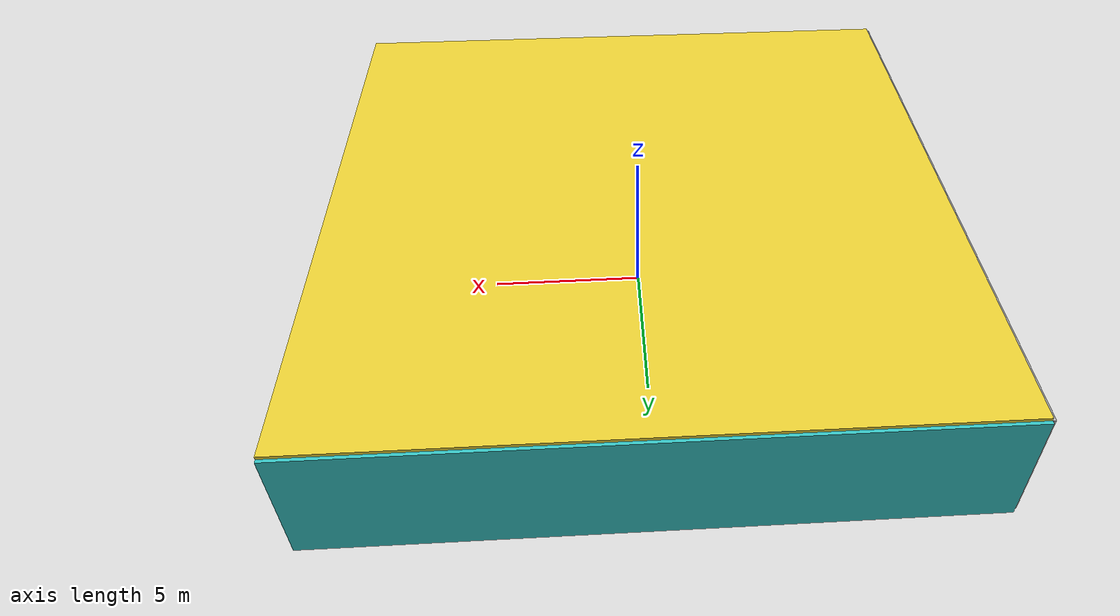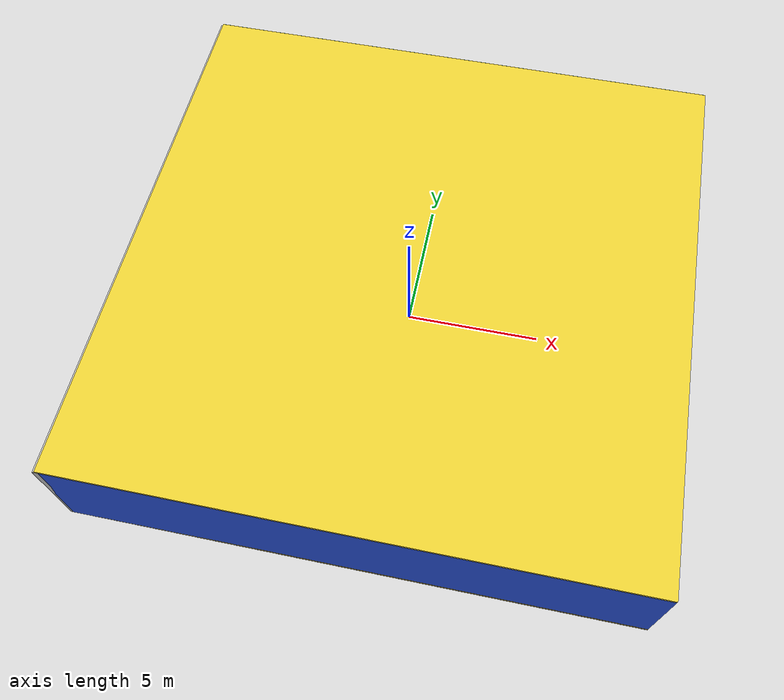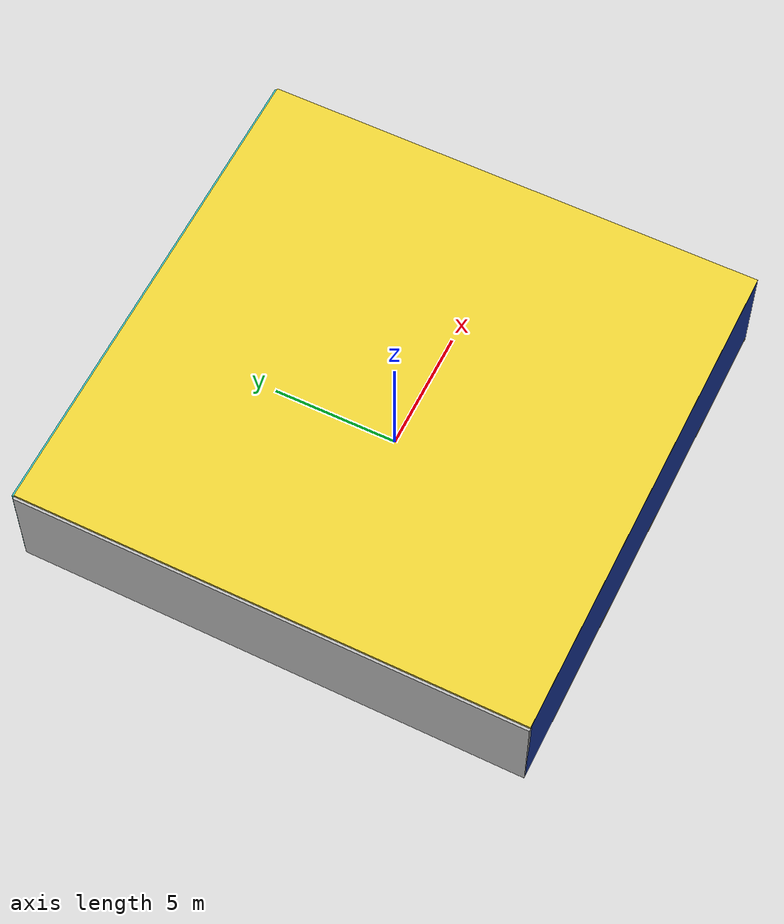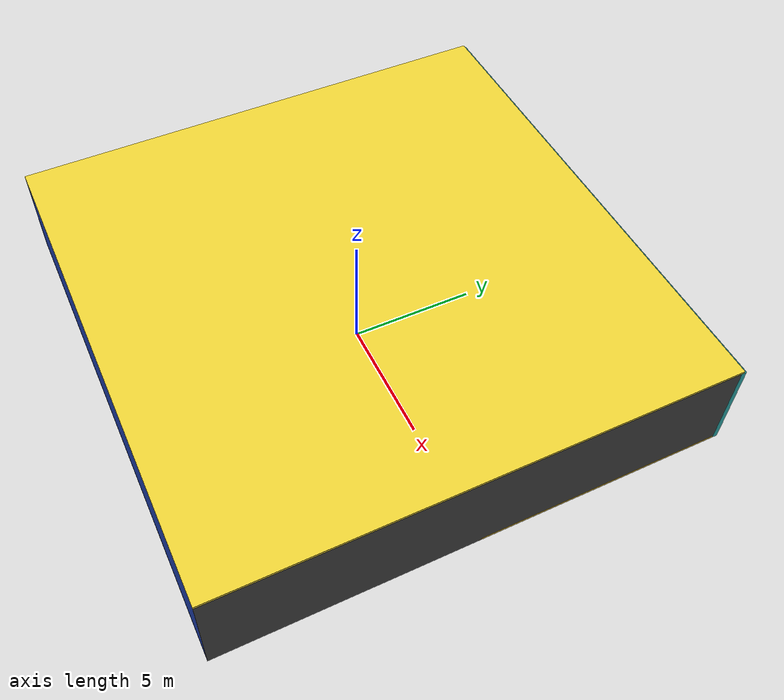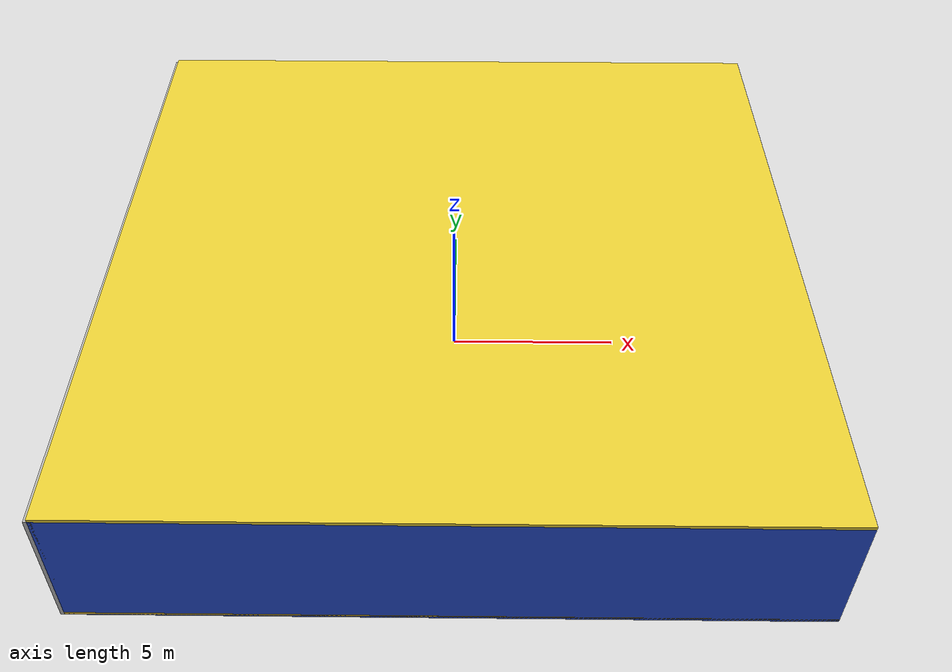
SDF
<sdf version="1.4">
 <world name="default">
  <physics type="ode">
   <max_step_size>0.001</max_step_size>
   <real_time_factor>1</real_time_factor>
   <real_time_update_rate>1000</real_time_update_rate>
   <gravity>0 0 -9.8</gravity>
  </physics>
  <scene><ambient>0.4 0.4 0.4 1</ambient><background>0.7 0.7 0.7 1</background><shadows>1</shadows></scene>
  <model name="Surrounding">
   <static>1</static>
   <link name="Ceiling">
    <collision name="Ceiling_Collision"><geometry><box><size>20 20 0.1</size></box></geometry></collision>
    <visual name="Ceiling_Visual">
     <geometry><box><size>20 20 0.1</size></box></geometry>
     <material>
      <script><uri>file://media/materials/scripts/gazebo.material</uri><name>Gazebo/ZincYellow</name></script>
     </material>
    </visual>
    <pose>0 0 4.05 0 0 0</pose>
   </link>
   <link name="Wall_South">
    <collision name="Wall_South_Collision">
     <geometry><box><size>20 0 4</size></box></geometry>
     <pose>0 0 2 0 -0 0</pose>
    </collision>
    <visual name="Wall_South_Visual">
     <pose>0 0 2 0 -0 0</pose>
     <geometry><box><size>20 0 4</size></box></geometry>
     <material>
      <script><uri>file://media/materials/scripts/gazebo.material</uri><name>Gazebo/Blue</name></script>
     </material>
    </visual>
    <velocity_decay><linear>0</linear><angular>0</angular></velocity_decay>
    <pose>0 -10 0 0 -0 0</pose>
   </link>
   <link name="Wall_East">
    <collision name="Wall_21_Collision">
     <geometry><box><size>20 0 4</size></box></geometry>
     <pose>0 0 2 0 -0 0</pose>
    </collision>
    <visual name="Wall_21_Visual">
     <pose>0 0 2 0 -0 0</pose>
     <geometry><box><size>20 0 4</size></box></geometry>
     <material>
      <script><uri>file://media/materials/scripts/gazebo.material</uri><name>Gazebo/DarkGrey</name></script>
     </material>
    </visual>
    <velocity_decay><linear>0</linear><angular>0</angular></velocity_decay>
    <pose>10 0 0 0 -0 1.5708</pose>
   </link>
   <link name="Wall_North">
    <collision name="Wall_22_Collision">
     <geometry><box><size>20 0.2 4</size></box></geometry>
     <pose>0 0 2 0 -0 0</pose>
    </collision>
    <visual name="Wall_22_Visual">
     <pose>0 0 2 0 -0 0</pose>
     <geometry><box><size>20 0.2 4</size></box></geometry>
     <material>
      <script>
       <uri>file://media/materials/scripts/gazebo.material</uri>
       <name>Gazebo/TurquoiseGlowOutline</name>
      </script>
     </material>
    </visual>
    <velocity_decay><linear>0</linear><angular>0</angular></velocity_decay>
    <pose>0 10 0 0 -0 0</pose>
   </link>
   <link name="Wall_West">
    <collision name="Wall_23_Collision">
     <geometry><box><size>20 0.2 4</size></box></geometry>
     <pose>0 0 2 0 -0 0</pose>
    </collision>
    <visual name="Wall_23_Visual">
     <pose>0 0 2 0 -0 0</pose>
     <geometry><box><size>20 0.2 4</size></box></geometry>
     <material>
      <script><uri>file://media/materials/scripts/gazebo.material</uri><name>Gazebo/LightOff</name></script>
     </material>
    </visual>
    <velocity_decay><linear>0</linear><angular>0</angular></velocity_decay>
    <pose>-10 0 0 0 0 -1.5708</pose>
   </link>
   <link name="Ground_link">
    <collision name="collision">
     <pose>0 0 .05 0 -0 0</pose>
     <geometry><box><size>20 20 0.1</size></box></geometry>
    </collision>
    <visual name="visual">
     <pose>0 0 .05 0 -0 0</pose>
     <geometry><box><size>20 20 0.1</size></box></geometry>
     <material>
      <script><uri>file://media/materials/scripts/gazebo.material</uri><name>Gazebo/Gold</name></script>
     </material>
    </visual>
   </link>
   <static>1</static>
  </model>
  <spherical_coordinates>
   <surface_model>EARTH_WGS84</surface_model>
   <latitude_deg>0</latitude_deg>
   <longitude_deg>0</longitude_deg>
   <elevation>0</elevation>
   <heading_deg>0</heading_deg>
  </spherical_coordinates>
  <light name="lightball_0" type="diffuse">
   <diffuse>0.8 0.8 0.8 1</diffuse>
   <specular>0.2 0.2 0.2 1</specular>
   <attenuation>
    <range>100</range>
    <constant>0.7</constant>
    <linear>0.01</linear>
    <quadratic>0.001</quadratic>
   </attenuation>
   <direction>-0.5 0.1 -0.9</direction>
   <pose>-8.88470398863 -4.64885721121 1.47055843064 0 0 0</pose>
  </light>
  <light name="lightball_1" type="diffuse">
   <diffuse>0.8 0.8 0.8 1</diffuse>
   <specular>0.2 0.2 0.2 1</specular>
   <attenuation>
    <range>100</range>
    <constant>0.7</constant>
    <linear>0.01</linear>
    <quadratic>0.001</quadratic>
   </attenuation>
   <direction>-0.5 0.1 -0.9</direction>
   <pose>-9.1299093939 8.92119294967 1.3846106477 0 0 0</pose>
  </light>
  <light name="lightball_2" type="diffuse">
   <diffuse>0.8 0.8 0.8 1</diffuse>
   <specular>0.2 0.2 0.2 1</specular>
   <attenuation>
    <range>100</range>
    <constant>0.7</constant>
    <linear>0.01</linear>
    <quadratic>0.001</quadratic>
   </attenuation>
   <direction>-0.5 0.1 -0.9</direction>
   <pose>-3.62798764364 7.36016372181 3.68522341013 0 0 0</pose>
  </light>
  <light name="lightball_3" type="diffuse">
   <diffuse>0.8 0.8 0.8 1</diffuse>
   <specular>0.2 0.2 0.2 1</specular>
   <attenuation>
    <range>100</range>
    <constant>0.7</constant>
    <linear>0.01</linear>
    <quadratic>0.001</quadratic>
   </attenuation>
   <direction>-0.5 0.1 -0.9</direction>
   <pose>-1.36564643867 9.78680954759 3.1021110503 0 0 0</pose>
  </light>
  <include>
   <uri>model://construction_cone</uri>
   <pose>-7.33069444526 -8.57238083115 0 0 0 1.72043866585</pose>
  </include>
  <include>
   <uri>model://robocup_3Dsim_goal</uri>
   <pose>-8.19917332981 -3.30581798821 0 0 0 1.64413975979</pose>
  </include>
  <include>
   <uri>model://textured_shapes</uri>
   <pose>-6.35714790884 3.78382317824 0 0 0 0.393439410618</pose>
  </include>
  <include>
   <uri>model://textured_shapes</uri>
   <pose>-5.67164155074 -4.38694388917 0 0 0 1.07879939554</pose>
  </include>
  <include>
   <uri>model://construction_cone</uri>
   <pose>-5.00716848624 1.55798356265 0 0 0 2.71855899645</pose>
  </include>
  <include>
   <uri>model://construction_cone</uri>
   <pose>-3.95210311174 3.3479316301 0 0 0 0.777269404765</pose>
  </include>
  <include><uri>model://cabinet</uri><pose>-0.654767997539 0.578304807869 0 0 0 0.30730982361</pose></include>
  <include>
   <uri>model://robocup_3Dsim_goal</uri>
   <pose>1.27544753462 -7.09904106164 0 0 0 3.08245845062</pose>
  </include>
  <include><uri>model://cabinet</uri><pose>8.59926475239 -1.39736592085 0 0 0 2.38079161541</pose></include>
  <include><uri>model://cabinet</uri><pose>6.38414608947 1.64128810801 0 0 0 2.09198419102</pose></include>
 </world>
</sdf>

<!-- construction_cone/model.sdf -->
<sdf version="1.5">
  <model name="Construction Cone">
    <link name="link">
      <collision name="collision">
        <geometry>
          <mesh>
            <scale>10 10 10</scale>
            <uri>file://isr-testbed/construction_cone/meshes/construction_cone.dae</uri>
          </mesh>
        </geometry>
      </collision>
      <visual name="visual">
        <geometry>
          <mesh>
            <scale>10 10 10</scale>
            <uri>file://isr-testbed/construction_cone/meshes/construction_cone.dae</uri>
          </mesh>
        </geometry>
      </visual>
    </link>
  </model>
</sdf>

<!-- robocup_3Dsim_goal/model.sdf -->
<sdf version="1.5">
  <model name="robocup_3d_goal">
    <static>true</static>
    <link name="left_post">
      <pose>0 1.05 0.45 0 0 0</pose>
      <collision name="collision">
        <geometry>
          <cylinder>
            <radius>0.05</radius>
            <length>0.9</length>
          </cylinder>
        </geometry>
      </collision>
      <visual name="visual">
        <geometry>
          <cylinder>
            <radius>0.05</radius>
            <length>0.9</length>
          </cylinder>
        </geometry>
        <material>
          <script>
            <uri>file://media/materials/scripts/gazebo.material</uri>
            <name>Gazebo/ZincYellow</name>
          </script>
        </material>
      </visual>
    </link>
    <link name="left_support_horiz_lower">
      <pose>0.30 1.05 0.01 0 0 0</pose>
      <collision name="collision">
        <geometry>
          <box>
            <size>0.50 0.02 0.02</size>
          </box>
        </geometry>
      </collision>
      <visual name="visual">
        <geometry>
          <box>
            <size>0.50 0.02 0.02</size>
          </box>
        </geometry>
        <material>
          <script>
            <uri>file://media/materials/scripts/gazebo.material</uri>
            <name>Gazebo/White</name>
          </script>
        </material>
      </visual>
    </link>
    <link name="left_support_horiz_upper">
      <pose>0.30 1.05 0.79 0 0 0</pose>
      <collision name="collision">
        <geometry>
          <box>
            <size>0.50 0.02 0.02</size>
          </box>
        </geometry>
      </collision>
      <visual name="visual">
        <geometry>
          <box>
            <size>0.50 0.02 0.02</size>
          </box>
        </geometry>
        <material>
          <script>
            <uri>file://media/materials/scripts/gazebo.material</uri>
            <name>Gazebo/White</name>
          </script>
        </material>
      </visual>
    </link>
    <link name="left_support_vertical">
      <pose>0.56 1.05 0.4 0 1.5708 0</pose>
      <collision name="collision">
        <geometry>
          <box>
            <size>0.80 0.02 0.02</size>
          </box>
        </geometry>
      </collision>
      <visual name="visual">
        <geometry>
          <box>
            <size>0.80 0.02 0.02</size>
          </box>
        </geometry>
        <material>
          <script>
            <uri>file://media/materials/scripts/gazebo.material</uri>
            <name>Gazebo/White</name>
          </script>
        </material>
      </visual>
    </link>
    <link name="right_support_horiz_lower">
      <pose>0.30 -1.05 0.01 0 0 0</pose>
      <collision name="collision">
        <geometry>
          <box>
            <size>0.50 0.02 0.02</size>
          </box>
        </geometry>
      </collision>
      <visual name="visual">
        <geometry>
          <box>
            <size>0.50 0.02 0.02</size>
          </box>
        </geometry>
        <material>
          <script>
            <uri>file://media/materials/scripts/gazebo.material</uri>
            <name>Gazebo/White</name>
          </script>
        </material>
      </visual>
    </link>
    <link name="right_support_horiz_upper">
      <pose>0.30 -1.05 0.79 0 0 0</pose>
      <collision name="collision">
        <geometry>
          <box>
            <size>0.50 0.02 0.02</size>
          </box>
        </geometry>
      </collision>
      <visual name="visual">
        <geometry>
          <box>
            <size>0.50 0.02 0.02</size>
          </box>
        </geometry>
        <material>
          <script>
            <uri>file://media/materials/scripts/gazebo.material</uri>
            <name>Gazebo/White</name>
          </script>
        </material>
      </visual>
    </link>
    <link name="right_support_vertical">
      <pose>0.56 -1.05 0.4 0 1.5708 0</pose>
      <collision name="collision">
        <geometry>
          <box>
            <size>0.80 0.02 0.02</size>
          </box>
        </geometry>
      </collision>
      <visual name="visual">
        <geometry>
          <box>
            <size>0.80 0.02 0.02</size>
          </box>
        </geometry>
        <material>
          <script>
            <uri>file://media/materials/scripts/gazebo.material</uri>
            <name>Gazebo/White</name>
          </script>
        </material>
      </visual>
    </link>
    <link name="center_support_horiz_lower">
      <pose>0.56 0 0.01 0 1.5708 0</pose>
      <collision name="collision">
        <geometry>
          <box>
            <size>0.02 2.08 0.02</size>
          </box>
        </geometry>
      </collision>
      <visual name="visual">
        <geometry>
          <box>
            <size>0.02 2.08 0.02</size>
          </box>
        </geometry>
        <material>
          <script>
            <uri>file://media/materials/scripts/gazebo.material</uri>
            <name>Gazebo/White</name>
          </script>
        </material>
      </visual>
    </link>
    <link name="center_support_horiz_upper">
      <pose>0.56 0 0.79 0 1.5708 0</pose>
      <collision name="collision">
        <geometry>
          <box>
            <size>0.02 2.08 0.02</size>
          </box>
        </geometry>
      </collision>
      <visual name="visual">
        <geometry>
          <box>
            <size>0.02 2.08 0.02</size>
          </box>
        </geometry>
        <material>
          <script>
            <uri>file://media/materials/scripts/gazebo.material</uri>
            <name>Gazebo/White</name>
          </script>
        </material>
      </visual>
    </link>
    <link name="right_post">
      <pose>0 -1.05 0.45 0 0 0</pose>
      <collision name="collision">
        <geometry>
          <cylinder>
            <radius>0.05</radius>
            <length>0.9</length>
          </cylinder>
        </geometry>
      </collision>
      <visual name="visual">
        <geometry>
          <cylinder>
            <radius>0.05</radius>
            <length>0.9</length>
          </cylinder>
        </geometry>
        <material>
          <script>
            <uri>file://media/materials/scripts/gazebo.material</uri>
            <name>Gazebo/ZincYellow</name>
          </script>
        </material>
      </visual>
    </link>
    <link name="crossbar">
      <pose>0 0 0.85 1.57 1.57 0</pose>
      <collision name="collision">
        <geometry>
          <cylinder>
            <radius>0.05</radius>
            <length>2.0</length>
          </cylinder>
        </geometry>
      </collision>
      <visual name="visual">
        <geometry>
          <cylinder>
            <radius>0.05</radius>
            <length>2.0</length>
          </cylinder>
        </geometry>
        <material>
          <script>
            <uri>file://media/materials/scripts/gazebo.material</uri>
            <name>Gazebo/ZincYellow</name>
          </script>
        </material>
      </visual>
    </link>
    <link name="center_net">
      <pose>0.56 0 0.40 0 0 0</pose>
      <collision name="collision">
        <geometry>
          <box>
            <size>0.01 2.1 0.80</size>
          </box>
        </geometry>
      </collision>
      <visual name="visual">
        <geometry>
          <box>
            <size>0.01 2.1 0.80</size>
          </box>
        </geometry>
        <material>
          <script>
            <uri>model://../model_source/models/robocup09_spl_field/materials/scripts/</uri>
            <uri>model://../model_source/models/robocup09_spl_field/materials/textures/</uri>
            <name>RoboCup/Net</name>
          </script>
        </material>
      </visual>
    </link>
    <link name="left_net">
      <pose>0.30 1.05 0.40 0 0 0</pose>
      <collision name="collision">
        <geometry>
          <box>
            <size>0.50 0.01 0.76</size>
          </box>
        </geometry>
      </collision>
      <visual name="visual">
        <geometry>
          <box>
            <size>0.50 0.01 0.76</size>
          </box>
        </geometry>
        <material>
          <script>
            <uri>model://../model_source/models/robocup09_spl_field/materials/scripts/</uri>
            <uri>model://../model_source/models/robocup09_spl_field/materials/textures/</uri>
            <name>RoboCup/Net</name>
          </script>
        </material>
      </visual>
    </link>
    <link name="right_net">
      <pose>0.30 -1.05 0.40 0 0 0</pose>
      <collision name="collision">
        <geometry>
          <box>
            <size>0.50 0.01 0.76</size>
          </box>
        </geometry>
      </collision>
      <visual name="visual">
        <geometry>
          <box>
            <size>0.50 0.01 0.76</size>
          </box>
        </geometry>
        <material>
          <script>
            <uri>model://../model_source/models/robocup09_spl_field/materials/scripts/</uri>
            <uri>model://../model_source/models/robocup09_spl_field/materials/textures/</uri>
            <name>RoboCup/Net</name>
          </script>
        </material>
      </visual>
    </link>
  </model>
</sdf>

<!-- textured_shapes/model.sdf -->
<sdf version="1.6">
  <model name="textured_shapes">
    <pose>0 0 0.5 0 0 0</pose>
    <link name="box">
      <pose>0 -1.5 0 0 0 0</pose>
      <collision name="collision">
        <geometry>
          <box>
            <size>1 1 1</size>
          </box>
        </geometry>
      </collision>
      <visual name="visual">
        <geometry>
          <box>
            <size>1 1 1</size>
          </box>
        </geometry>
        <material>
          <script>
            <uri>model://../model_source/models/textured_shapes/materials/scripts</uri>
            <uri>model://../model_source/models/textured_shapes/materials/textures</uri>
            <name>TexturedShape/Squares</name>
          </script>
        </material>
      </visual>
    </link>
    <link name="sphere">
      <collision name="collision">
        <geometry>
          <sphere>
            <radius>0.5</radius>
          </sphere>
        </geometry>
      </collision>
      <visual name="visual">
        <geometry>
          <sphere>
            <radius>0.5</radius>
          </sphere>
        </geometry>
        <material>
          <script>
            <uri>model://../model_source/models/textured_shapes/materials/scripts</uri>
            <uri>model://../model_source/models/textured_shapes/materials/textures</uri>
            <name>TexturedShape/Squares</name>
          </script>
        </material>
      </visual>
    </link>
    <link name="cylinder">
      <pose>0 1.5 0 0 0 0</pose>
      <collision name="collision">
        <geometry>
          <cylinder>
            <radius>0.5</radius>
            <length>1</length>
          </cylinder>
        </geometry>
      </collision>
      <visual name="visual">
        <geometry>
          <cylinder>
            <radius>0.5</radius>
            <length>1</length>
          </cylinder>
        </geometry>
        <material>
          <script>
            <uri>model://../model_source/models/textured_shapes/materials/scripts</uri>
            <uri>model://../model_source/models/textured_shapes/materials/textures</uri>
            <name>TexturedShape/Squares</name>
          </script>
        </material>
      </visual>
    </link>
  </model>
</sdf>

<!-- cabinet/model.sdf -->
<sdf version="1.5">
  <model name="cabinet">
    <static>true</static>
    <link name="cabinet_bottom_plate">
      <inertial>
        <pose>0 0 -1 0 0 0</pose>
        <inertia>
          <ixx>2.050000</ixx>
          <ixy>0</ixy>
          <ixz>0</ixz>
          <iyy>2.050000</iyy>
          <iyz>0</iyz>
          <izz>2.050000</izz>
        </inertia>
        <mass>25.000000</mass>
      </inertial>
      <collision name="cabinet_bottom_plate_geom">
        <pose>0 0 0.010000 0 0 0</pose>
        <geometry>
          <box>
            <size>0.450000 0.450000 0.020000</size>
          </box>
        </geometry>
      </collision>
      <visual name="cabinet_bottom_plate_geom_visual">
        <pose>0 0 0.010000 0 0 0</pose>
        <geometry>
          <box>
            <size>0.450000 0.450000 0.020000</size>
          </box>
        </geometry>
        <material>
          <script>
            <uri>model://media/materials/scripts/gazebo.material</uri>
            <name>Gazebo/Wood</name>
          </script>
        </material>
      </visual>
      <collision name="cabinet_bottom_plate_geom_cabinet_back_plate">
        <pose>0.235000 0 0.510000 0 0 0</pose>
        <geometry>
          <box>
            <size>0.020000 0.450000 1.020000</size>
          </box>
        </geometry>
      </collision>
      <visual name="cabinet_bottom_plate_geom_cabinet_back_plate_visual">
        <pose>0.235000 0 0.510000 0 0 0</pose>
        <geometry>
          <box>
            <size>0.020000 0.450000 1.020000</size>
          </box>
        </geometry>
        <material>
          <script>
            <uri>model://media/materials/scripts/gazebo.material</uri>
            <name>Gazebo/Wood</name>
          </script>
        </material>
      </visual>
      <collision name="cabinet_bottom_plate_geom_cabinet_left_plate">
        <pose>0 0.235000 0.510000 0 0 0</pose>
        <geometry>
          <box>
            <size>0.450000 0.020000 1.020000</size>
          </box>
        </geometry>
      </collision>
      <visual name="cabinet_bottom_plate_geom_cabinet_left_plate_visual">
        <pose>0 0.235000 0.510000 0 0 0</pose>
        <geometry>
          <box>
            <size>0.450000 0.020000 1.020000</size>
          </box>
        </geometry>
        <material>
          <script>
            <uri>model://media/materials/scripts/gazebo.material</uri>
            <name>Gazebo/Wood</name>
          </script>
        </material>
      </visual>
      <collision name="cabinet_bottom_plate_geom_cabinet_middle_plate">
        <pose>0 0 0.510000 0 0 0</pose>
        <geometry>
          <box>
            <size>0.450000 0.450000 0.020000</size>
          </box>
        </geometry>
      </collision>
      <visual name="cabinet_bottom_plate_geom_cabinet_middle_plate_visual">
        <pose>0 0 0.510000 0 0 0</pose>
        <geometry>
          <box>
            <size>0.450000 0.450000 0.020000</size>
          </box>
        </geometry>
        <material>
          <script>
            <uri>model://media/materials/scripts/gazebo.material</uri>
            <name>Gazebo/Wood</name>
          </script>
        </material>
      </visual>
      <collision name="cabinet_bottom_plate_geom_cabinet_right_plate">
        <pose>0 -0.235000 0.510000 0 0 0</pose>
        <geometry>
          <box>
            <size>0.450000 0.020000 1.020000</size>
          </box>
        </geometry>
      </collision>
      <visual name="cabinet_bottom_plate_geom_cabinet_right_plate_visual">
        <pose>0 -0.235000 0.510000 0 0 0</pose>
        <geometry>
          <box>
            <size>0.450000 0.020000 1.020000</size>
          </box>
        </geometry>
        <material>
          <script>
            <uri>model://media/materials/scripts/gazebo.material</uri>
            <name>Gazebo/Wood</name>
          </script>
        </material>
      </visual>
      <collision name="cabinet_bottom_plate_geom_cabinet_top_plate">
        <pose>0 0 1.010000 0 0 0</pose>
        <geometry>
          <box>
            <size>0.450000 0.450000 0.020000</size>
          </box>
        </geometry>
      </collision>
      <visual name="cabinet_bottom_plate_geom_cabinet_top_plate_visual">
        <pose>0 0 1.010000 0 0 0</pose>
        <geometry>
          <box>
            <size>0.450000 0.450000 0.020000</size>
          </box>
        </geometry>
        <material>
          <script>
            <uri>model://media/materials/scripts/gazebo.material</uri>
            <name>Gazebo/Wood</name>
          </script>
        </material>
      </visual>
    </link>
  </model>
</sdf>
